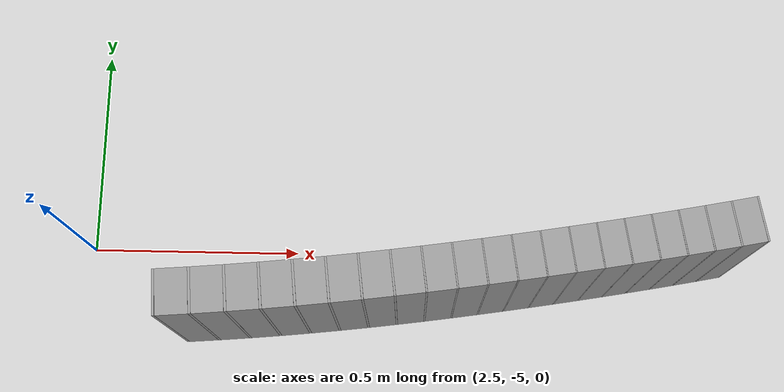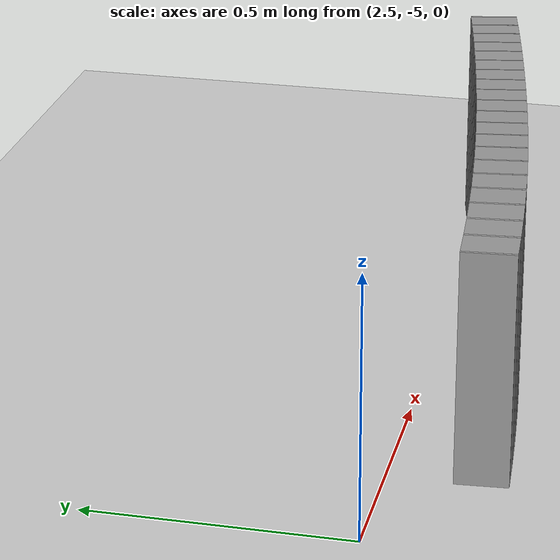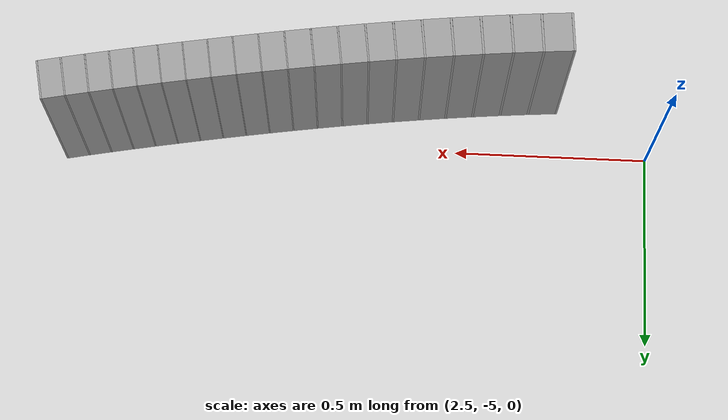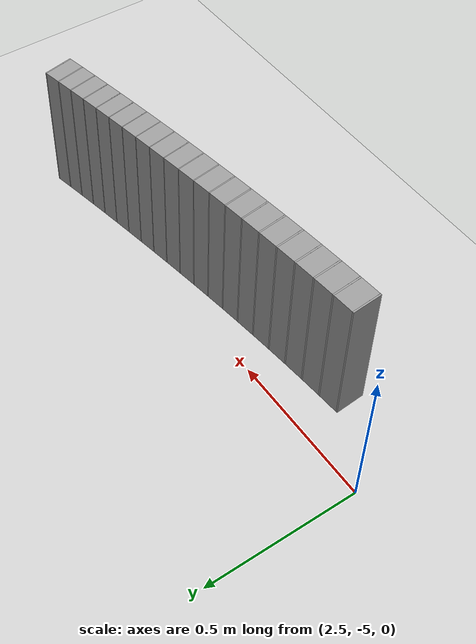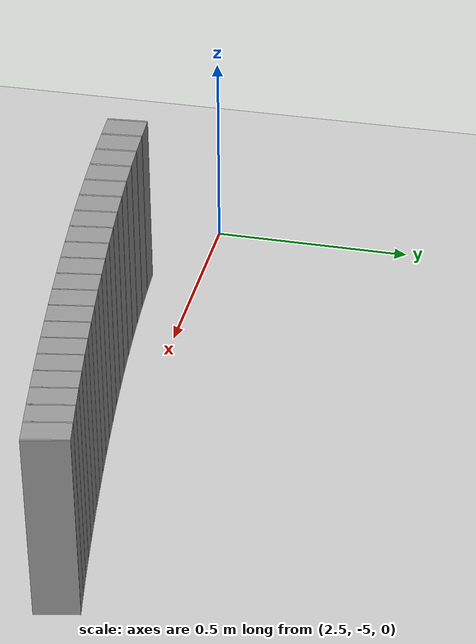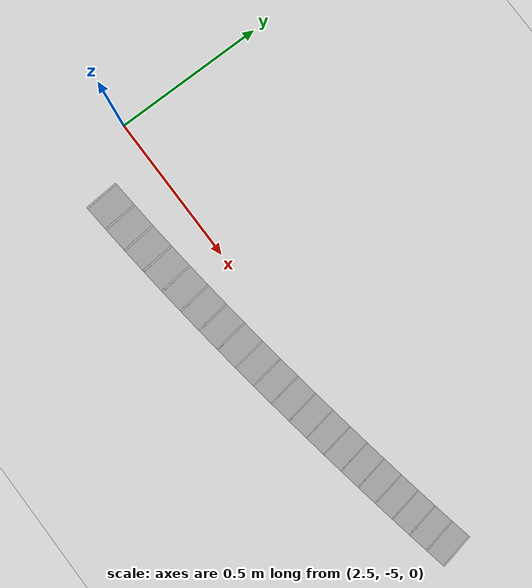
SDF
<sdf version="1.6">
 <world name="default">
  <include><uri>model://ground_plane</uri></include>
  <include><uri>model://sun</uri></include>
  <model name="wall_758_inward">
   <static>true</static>
   <link name="link">
    <collision name="collision">
     <geometry><box><size>0.005524316209525216 0.1 0.45</size></box></geometry>
    </collision>
    <visual name="visual">
     <geometry><box><size>0.005524316209525216 0.1 0.45</size></box></geometry>
     <material>
      <script><uri>file://media/materials/scripts/gazebo.material</uri><name>Gazebo/Gray</name></script>
     </material>
    </visual>
   </link>
   <pose>2.739135405832698 -5.17234415760119 0.225 0 0 0.06905191187247212</pose>
  </model>
  <model name="wall_759_inward">
   <static>true</static>
   <link name="link">
    <collision name="collision">
     <geometry><box><size>0.06990539688152177 0.1 0.45</size></box></geometry>
    </collision>
    <visual name="visual">
     <geometry><box><size>0.06990539688152177 0.1 0.45</size></box></geometry>
     <material>
      <script><uri>file://media/materials/scripts/gazebo.material</uri><name>Gazebo/Gray</name></script>
     </material>
    </visual>
   </link>
   <pose>2.7767489110579824 -5.169581444655477 0.225 0 0 0.07365552497468042</pose>
  </model>
  <model name="wall_760_inward">
   <static>true</static>
   <link name="link">
    <collision name="collision">
     <geometry><box><size>0.005645349236862044 0.1 0.45</size></box></geometry>
    </collision>
    <visual name="visual">
     <geometry><box><size>0.005645349236862044 0.1 0.45</size></box></geometry>
     <material>
      <script><uri>file://media/materials/scripts/gazebo.material</uri><name>Gazebo/Gray</name></script>
     </material>
    </visual>
   </link>
   <pose>2.81442085380926 -5.166788353973812 0.225 0 0 0.07836000002536352</pose>
  </model>
  <model name="wall_761_inward">
   <static>true</static>
   <link name="link">
    <collision name="collision">
     <geometry><box><size>0.06888856216912606 0.1 0.45</size></box></geometry>
    </collision>
    <visual name="visual">
     <geometry><box><size>0.06888856216912606 0.1 0.45</size></box></geometry>
     <material>
      <script><uri>file://media/materials/scripts/gazebo.material</uri><name>Gazebo/Gray</name></script>
     </material>
    </visual>
   </link>
   <pose>2.8515603885091965 -5.163709588335916 0.225 0 0 0.08306447507602607</pose>
  </model>
  <model name="wall_762_inward">
   <static>true</static>
   <link name="link">
    <collision name="collision">
     <geometry><box><size>0.005643807563981086 0.1 0.45</size></box></geometry>
    </collision>
    <visual name="visual">
     <geometry><box><size>0.005643807563981086 0.1 0.45</size></box></geometry>
     <material>
      <script><uri>file://media/materials/scripts/gazebo.material</uri><name>Gazebo/Gray</name></script>
     </material>
    </visual>
   </link>
   <pose>2.8886969521417765 -5.1606044271410845 0.225 0 0 0.08776766538503007</pose>
  </model>
  <model name="wall_763_inward">
   <static>true</static>
   <link name="link">
    <collision name="collision">
     <geometry><box><size>0.0678720042112431 0.1 0.45</size></box></geometry>
    </collision>
    <visual name="visual">
     <geometry><box><size>0.0678720042112431 0.1 0.45</size></box></geometry>
     <material>
      <script><uri>file://media/materials/scripts/gazebo.material</uri><name>Gazebo/Gray</name></script>
     </material>
    </visual>
   </link>
   <pose>2.9252990085832247 -5.157223452251948 0.225 0 0 0.0924708556941447</pose>
  </model>
  <model name="wall_764_inward">
   <static>true</static>
   <link name="link">
    <collision name="collision">
     <geometry><box><size>0.005535296555494741 0.1 0.45</size></box></geometry>
    </collision>
    <visual name="visual">
     <geometry><box><size>0.005535296555494741 0.1 0.45</size></box></geometry>
     <material>
      <script><uri>file://media/materials/scripts/gazebo.material</uri><name>Gazebo/Gray</name></script>
     </material>
    </visual>
   </link>
   <pose>2.9618446387192874 -5.153821559988344 0.225 0 0 0.09708361918176393</pose>
  </model>
  <model name="wall_765_inward">
   <static>true</static>
   <link name="link">
    <collision name="collision">
     <geometry><box><size>0.06686507366403845 0.1 0.45</size></box></geometry>
    </collision>
    <visual name="visual">
     <geometry><box><size>0.06686507366403845 0.1 0.45</size></box></geometry>
     <material>
      <script><uri>file://media/materials/scripts/gazebo.material</uri><name>Gazebo/Gray</name></script>
     </material>
    </visual>
   </link>
   <pose>2.9978590579307247 -5.150159177970698 0.225 0 0 0.1016963826694267</pose>
  </model>
  <model name="wall_766_inward">
   <static>true</static>
   <link name="link">
    <collision name="collision">
     <geometry><box><size>0.00531972558293839 0.1 0.45</size></box></geometry>
    </collision>
    <visual name="visual">
     <geometry><box><size>0.00531972558293839 0.1 0.45</size></box></geometry>
     <material>
      <script><uri>file://media/materials/scripts/gazebo.material</uri><name>Gazebo/Gray</name></script>
     </material>
    </visual>
   </link>
   <pose>3.033763758685367 -5.146483307096668 0.225 0 0 0.10612950184231064</pose>
  </model>
  <model name="wall_767_inward">
   <static>true</static>
   <link name="link">
    <collision name="collision"><geometry><box><size>0.06587070828821 0.1 0.45</size></box></geometry></collision>
    <visual name="visual">
     <geometry><box><size>0.06587070828821 0.1 0.45</size></box></geometry>
     <material>
      <script><uri>file://media/materials/scripts/gazebo.material</uri><name>Gazebo/Gray</name></script>
     </material>
    </visual>
   </link>
   <pose>3.0691429125913103 -5.1425675420423325 0.225 0 0 0.11056262101498819</pose>
  </model>
  <model name="wall_768_inward">
   <static>true</static>
   <link name="link">
    <collision name="collision">
     <geometry><box><size>0.0050201603496498395 0.1 0.45</size></box></geometry>
    </collision>
    <visual name="visual">
     <geometry><box><size>0.0050201603496498395 0.1 0.45</size></box></geometry>
     <material>
      <script><uri>file://media/materials/scripts/gazebo.material</uri><name>Gazebo/Gray</name></script>
     </material>
    </visual>
   </link>
   <pose>3.104370742897349 -5.13864614699297 0.225 0 0 0.11474610017581027</pose>
  </model>
  <model name="wall_769_inward">
   <static>true</static>
   <link name="link">
    <collision name="collision">
     <geometry><box><size>0.06489835102779488 0.1 0.45</size></box></geometry>
    </collision>
    <visual name="visual">
     <geometry><box><size>0.06489835102779488 0.1 0.45</size></box></geometry>
     <material>
      <script><uri>file://media/materials/scripts/gazebo.material</uri><name>Gazebo/Gray</name></script>
     </material>
    </visual>
   </link>
   <pose>3.139084277835125 -5.134508680988548 0.225 0 0 0.11892957933676716</pose>
  </model>
  <model name="wall_770_inward">
   <static>true</static>
   <link name="link">
    <collision name="collision">
     <geometry><box><size>0.004656180526675035 0.1 0.45</size></box></geometry>
    </collision>
    <visual name="visual">
     <geometry><box><size>0.004656180526675035 0.1 0.45</size></box></geometry>
     <material>
      <script><uri>file://media/materials/scripts/gazebo.material</uri><name>Gazebo/Gray</name></script>
     </material>
    </visual>
   </link>
   <pose>3.1736147950894864 -5.130373411261498 0.225 0 0 0.12280973951213371</pose>
  </model>
  <model name="wall_771_inward">
   <static>true</static>
   <link name="link">
    <collision name="collision">
     <geometry><box><size>0.06394826088369651 0.1 0.45</size></box></geometry>
    </collision>
    <visual name="visual">
     <geometry><box><size>0.06394826088369651 0.1 0.45</size></box></geometry>
     <material>
      <script><uri>file://media/materials/scripts/gazebo.material</uri><name>Gazebo/Gray</name></script>
     </material>
    </visual>
   </link>
   <pose>3.207643226789979 -5.126048245300325 0.225 0 0 0.12668989968731267</pose>
  </model>
  <model name="wall_772_inward">
   <static>true</static>
   <link name="link">
    <collision name="collision">
     <geometry><box><size>0.004263012784811175 0.1 0.45</size></box></geometry>
    </collision>
    <visual name="visual">
     <geometry><box><size>0.004263012784811175 0.1 0.45</size></box></geometry>
     <material>
      <script><uri>file://media/materials/scripts/gazebo.material</uri><name>Gazebo/Gray</name></script>
     </material>
    </visual>
   </link>
   <pose>3.2414745560401865 -5.121731444990248 0.225 0 0 0.13024241781371754</pose>
  </model>
  <model name="wall_773_inward">
   <static>true</static>
   <link name="link">
    <collision name="collision">
     <geometry><box><size>0.06302507704749266 0.1 0.45</size></box></geometry>
    </collision>
    <visual name="visual">
     <geometry><box><size>0.06302507704749266 0.1 0.45</size></box></geometry>
     <material>
      <script><uri>file://media/materials/scripts/gazebo.material</uri><name>Gazebo/Gray</name></script>
     </material>
    </visual>
   </link>
   <pose>3.27481891422486 -5.117250966458637 0.225 0 0 0.13379493594003725</pose>
  </model>
  <model name="wall_774_inward">
   <static>true</static>
   <link name="link">
    <collision name="collision">
     <geometry><box><size>0.0038614142186891016 0.1 0.45</size></box></geometry>
    </collision>
    <visual name="visual">
     <geometry><box><size>0.0038614142186891016 0.1 0.45</size></box></geometry>
     <material>
      <script><uri>file://media/materials/scripts/gazebo.material</uri><name>Gazebo/Gray</name></script>
     </material>
    </visual>
   </link>
   <pose>3.3079624322788304 -5.1127836115930645 0.225 0 0 0.13701278667547281</pose>
  </model>
  <model name="wall_775_inward">
   <static>true</static>
   <link name="link">
    <collision name="collision">
     <geometry><box><size>0.06213191111707123 0.1 0.45</size></box></geometry>
    </collision>
    <visual name="visual">
     <geometry><box><size>0.06213191111707123 0.1 0.45</size></box></geometry>
     <material>
      <script><uri>file://media/materials/scripts/gazebo.material</uri><name>Gazebo/Gray</name></script>
     </material>
    </visual>
   </link>
   <pose>3.3406360511081057 -5.108177771956408 0.225 0 0 0.1402306374109935</pose>
  </model>
  <model name="wall_776_inward">
   <static>true</static>
   <link name="link">
    <collision name="collision">
     <geometry><box><size>0.0034942985131828377 0.1 0.45</size></box></geometry>
    </collision>
    <visual name="visual">
     <geometry><box><size>0.0034942985131828377 0.1 0.45</size></box></geometry>
     <material>
      <script><uri>file://media/materials/scripts/gazebo.material</uri><name>Gazebo/Gray</name></script>
     </material>
    </visual>
   </link>
   <pose>3.3731263370356723 -5.103586398771256 0.225 0 0 0.1431425569537007</pose>
  </model>
  <model name="wall_777_inward">
   <static>true</static>
   <link name="link">
    <collision name="collision">
     <geometry><box><size>0.06126498014838731 0.1 0.45</size></box></geometry>
    </collision>
    <visual name="visual">
     <geometry><box><size>0.06126498014838731 0.1 0.45</size></box></geometry>
     <material>
      <script><uri>file://media/materials/scripts/gazebo.material</uri><name>Gazebo/Gray</name></script>
     </material>
    </visual>
   </link>
   <pose>3.405161963176517 -5.098879037817467 0.225 0 0 0.14605447649661718</pose>
  </model>
  <model name="wall_778_inward">
   <static>true</static>
   <link name="link">
    <collision name="collision">
     <geometry><box><size>0.003170792583014486 0.1 0.45</size></box></geometry>
    </collision>
    <visual name="visual">
     <geometry><box><size>0.003170792583014486 0.1 0.45</size></box></geometry>
     <material>
      <script><uri>file://media/materials/scripts/gazebo.material</uri><name>Gazebo/Gray</name></script>
     </material>
    </visual>
   </link>
   <pose>3.4370362103005725 -5.094186039514232 0.225 0 0 0.1486968067237927</pose>
  </model>
  <model name="wall_779_inward">
   <static>true</static>
   <link name="link">
    <collision name="collision">
     <geometry><box><size>0.06042620439886437 0.1 0.45</size></box></geometry>
    </collision>
    <visual name="visual">
     <geometry><box><size>0.06042620439886437 0.1 0.45</size></box></geometry>
     <material>
      <script><uri>file://media/materials/scripts/gazebo.material</uri><name>Gazebo/Gray</name></script>
     </material>
    </visual>
   </link>
   <pose>3.4684718803760406 -5.089396173257941 0.225 0 0 0.151339136951142</pose>
  </model>
  <model name="wall_780_inward">
   <static>true</static>
   <link name="link">
    <collision name="collision">
     <geometry><box><size>0.00291312234169311 0.1 0.45</size></box></geometry>
    </collision>
    <visual name="visual">
     <geometry><box><size>0.00291312234169311 0.1 0.45</size></box></geometry>
     <material>
      <script><uri>file://media/materials/scripts/gazebo.material</uri><name>Gazebo/Gray</name></script>
     </material>
    </visual>
   </link>
   <pose>3.499779024484994 -5.0846180934781575 0.225 0 0 0.15376674128719456</pose>
  </model>
  <model name="wall_781_inward">
   <static>true</static>
   <link name="link">
    <collision name="collision">
     <geometry><box><size>0.05961271814025621 0.1 0.45</size></box></geometry>
    </collision>
    <visual name="visual">
     <geometry><box><size>0.05961271814025621 0.1 0.45</size></box></geometry>
     <material>
      <script><uri>file://media/materials/scripts/gazebo.material</uri><name>Gazebo/Gray</name></script>
     </material>
    </visual>
   </link>
   <pose>3.5306619095954748 -5.079758326673904 0.225 0 0 0.15619434562279966</pose>
  </model>
  <model name="wall_782_inward">
   <static>true</static>
   <link name="link">
    <collision name="collision">
     <geometry><box><size>0.0027340384950050693 0.1 0.45</size></box></geometry>
    </collision>
    <visual name="visual">
     <geometry><box><size>0.0027340384950050693 0.1 0.45</size></box></geometry>
     <material>
      <script><uri>file://media/materials/scripts/gazebo.material</uri><name>Gazebo/Gray</name></script>
     </material>
    </visual>
   </link>
   <pose>3.5614553090061323 -5.074905919337347 0.225 0 0 0.15847271300620547</pose>
  </model>
  <model name="wall_783_inward">
   <static>true</static>
   <link name="link">
    <collision name="collision">
     <geometry><box><size>0.0588252175808481 0.1 0.45</size></box></geometry>
    </collision>
    <visual name="visual">
     <geometry><box><size>0.0588252175808481 0.1 0.45</size></box></geometry>
     <material>
      <script><uri>file://media/materials/scripts/gazebo.material</uri><name>Gazebo/Gray</name></script>
     </material>
    </visual>
   </link>
   <pose>3.5918386009070664 -5.069982417869907 0.225 0 0 0.1607510803901098</pose>
  </model>
  <model name="wall_784_inward">
   <static>true</static>
   <link name="link">
    <collision name="collision">
     <geometry><box><size>0.002638755453756051 0.1 0.45</size></box></geometry>
    </collision>
    <visual name="visual">
     <geometry><box><size>0.002638755453756051 0.1 0.45</size></box></geometry>
     <material>
      <script><uri>file://media/materials/scripts/gazebo.material</uri><name>Gazebo/Gray</name></script>
     </material>
    </visual>
   </link>
   <pose>3.6221739029747084 -5.065060603558226 0.225 0 0 0.1629500450404961</pose>
  </model>
  <model name="wall_785_inward">
   <static>true</static>
   <link name="link">
    <collision name="collision">
     <geometry><box><size>0.05806338358619412 0.1 0.45</size></box></geometry>
    </collision>
    <visual name="visual">
     <geometry><box><size>0.05806338358619412 0.1 0.45</size></box></geometry>
     <material>
      <script><uri>file://media/materials/scripts/gazebo.material</uri><name>Gazebo/Gray</name></script>
     </material>
    </visual>
   </link>
   <pose>3.6521124856921694 -5.0600737708298915 0.225 0 0 0.16514900969069346</pose>
  </model>
  <model name="wall_786_inward">
   <static>true</static>
   <link name="link">
    <collision name="collision">
     <geometry><box><size>0.002624962729653232 0.1 0.45</size></box></geometry>
    </collision>
    <visual name="visual">
     <geometry><box><size>0.002624962729653232 0.1 0.45</size></box></geometry>
     <material>
      <script><uri>file://media/materials/scripts/gazebo.material</uri><name>Gazebo/Gray</name></script>
     </material>
    </visual>
   </link>
   <pose>3.6820433169714315 -5.055082378114034 0.225 0 0 0.16733648037672647</pose>
  </model>
  <model name="wall_787_inward">
   <static>true</static>
   <link name="link">
    <collision name="collision">
     <geometry><box><size>0.05732987286451436 0.1 0.45</size></box></geometry>
    </collision>
    <visual name="visual">
     <geometry><box><size>0.05732987286451436 0.1 0.45</size></box></geometry>
     <material>
      <script><uri>file://media/materials/scripts/gazebo.material</uri><name>Gazebo/Gray</name></script>
     </material>
    </visual>
   </link>
   <pose>3.7115914955915716 -5.050027624115072 0.225 0 0 0.16952395106248416</pose>
  </model>
  <model name="wall_788_inward">
   <static>true</static>
   <link name="link">
    <collision name="collision">
     <geometry><box><size>0.0026883715484296005 0.1 0.45</size></box></geometry>
    </collision>
    <visual name="visual">
     <geometry><box><size>0.0026883715484296005 0.1 0.45</size></box></geometry>
     <material>
      <script><uri>file://media/materials/scripts/gazebo.material</uri><name>Gazebo/Gray</name></script>
     </material>
    </visual>
   </link>
   <pose>3.7411699314758304 -5.04496172312345 0.225 0 0 0.17176426255991203</pose>
  </model>
  <model name="wall_789_inward">
   <static>true</static>
   <link name="link">
    <collision name="collision">
     <geometry><box><size>0.0566272792420674 0.1 0.45</size></box></geometry>
    </collision>
    <visual name="visual">
     <geometry><box><size>0.0566272792420674 0.1 0.45</size></box></geometry>
     <material>
      <script><uri>file://media/materials/scripts/gazebo.material</uri><name>Gazebo/Gray</name></script>
     </material>
    </visual>
   </link>
   <pose>3.7703804228420967 -5.039830094697747 0.225 0 0 0.17400457405791933</pose>
  </model>
  <model name="wall_790_inward">
   <static>true</static>
   <link name="link">
    <collision name="collision">
     <geometry><box><size>0.0028343519245782383 0.1 0.45</size></box></geometry>
    </collision>
    <visual name="visual">
     <geometry><box><size>0.0028343519245782383 0.1 0.45</size></box></geometry>
     <material>
      <script><uri>file://media/materials/scripts/gazebo.material</uri><name>Gazebo/Gray</name></script>
     </material>
    </visual>
   </link>
   <pose>3.7996617007581346 -5.034679567054954 0.225 0 0 0.17636653619115458</pose>
  </model>
  <model name="wall_791_inward">
   <static>true</static>
   <link name="link">
    <collision name="collision">
     <geometry><box><size>0.05596184398277228 0.1 0.45</size></box></geometry>
    </collision>
    <visual name="visual">
     <geometry><box><size>0.05596184398277228 0.1 0.45</size></box></geometry>
     <material>
      <script><uri>file://media/materials/scripts/gazebo.material</uri><name>Gazebo/Gray</name></script>
     </material>
    </visual>
   </link>
   <pose>3.828592093895045 -5.029456512870468 0.225 0 0 0.17872849832455634</pose>
  </model>
  <model name="wall_792_inward">
   <static>true</static>
   <link name="link">
    <collision name="collision">
     <geometry><box><size>0.003054786003624735 0.1 0.45</size></box></geometry>
    </collision>
    <visual name="visual">
     <geometry><box><size>0.003054786003624735 0.1 0.45</size></box></geometry>
     <material>
      <script><uri>file://media/materials/scripts/gazebo.material</uri><name>Gazebo/Gray</name></script>
     </material>
    </visual>
   </link>
   <pose>3.857629661071636 -5.024206744375988 0.225 0 0 0.18127415607711858</pose>
  </model>
  <model name="wall_793_inward">
   <static>true</static>
   <link name="link">
    <collision name="collision">
     <geometry><box><size>0.055339349205225416 0.1 0.45</size></box></geometry>
    </collision>
    <visual name="visual">
     <geometry><box><size>0.055339349205225416 0.1 0.45</size></box></geometry>
     <material>
      <script><uri>file://media/materials/scripts/gazebo.material</uri><name>Gazebo/Gray</name></script>
     </material>
    </visual>
   </link>
   <pose>3.8863355415164547 -5.018873742340668 0.225 0 0 0.18381981382953344</pose>
  </model>
  <model name="wall_794_inward">
   <static>true</static>
   <link name="link">
    <collision name="collision">
     <geometry><box><size>0.0033493053608449727 0.1 0.45</size></box></geometry>
    </collision>
    <visual name="visual">
     <geometry><box><size>0.0033493053608449727 0.1 0.45</size></box></geometry>
     <material>
      <script><uri>file://media/materials/scripts/gazebo.material</uri><name>Gazebo/Gray</name></script>
     </material>
    </visual>
   </link>
   <pose>3.915184634083243 -5.01350540546672 0.225 0 0 0.18661090525391966</pose>
  </model>
  <model name="wall_795_inward">
   <static>true</static>
   <link name="link">
    <collision name="collision">
     <geometry><box><size>0.054770599828307495 0.1 0.45</size></box></geometry>
    </collision>
    <visual name="visual">
     <geometry><box><size>0.054770599828307495 0.1 0.45</size></box></geometry>
     <material>
      <script><uri>file://media/materials/scripts/gazebo.material</uri><name>Gazebo/Gray</name></script>
     </material>
    </visual>
   </link>
   <pose>3.9437257810753876 -5.008038832874401 0.225 0 0 0.18940199667865065</pose>
  </model>
  <model name="wall_796_inward">
   <static>true</static>
   <link name="link">
    <collision name="collision">
     <geometry><box><size>0.003709361515052359 0.1 0.45</size></box></geometry>
    </collision>
    <visual name="visual">
     <geometry><box><size>0.003709361515052359 0.1 0.45</size></box></geometry>
     <material>
      <script><uri>file://media/materials/scripts/gazebo.material</uri><name>Gazebo/Gray</name></script>
     </material>
    </visual>
   </link>
   <pose>3.9724417750311583 -5.002528145485559 0.225 0 0 0.19249313619718345</pose>
  </model>
  <model name="wall_797_inward">
   <static>true</static>
   <link name="link">
    <collision name="collision">
     <geometry><box><size>0.05426254932249531 0.1 0.45</size></box></geometry>
    </collision>
    <visual name="visual">
     <geometry><box><size>0.05426254932249531 0.1 0.45</size></box></geometry>
     <material>
      <script><uri>file://media/materials/scripts/gazebo.material</uri><name>Gazebo/Gray</name></script>
     </material>
    </visual>
   </link>
   <pose>4.000876198072254 -4.996900648968801 0.225 0 0 0.19558427571582723</pose>
  </model>
  <model name="wall_798_inward">
   <static>true</static>
   <link name="link">
    <collision name="collision">
     <geometry><box><size>0.004157695448361153 0.1 0.45</size></box></geometry>
    </collision>
    <visual name="visual">
     <geometry><box><size>0.004157695448361153 0.1 0.45</size></box></geometry>
     <material>
      <script><uri>file://media/materials/scripts/gazebo.material</uri><name>Gazebo/Gray</name></script>
     </material>
    </visual>
   </link>
   <pose>4.0295279967000965 -4.9912168994945665 0.225 0 0 0.19904902885511477</pose>
  </model>
 </world>
</sdf>
